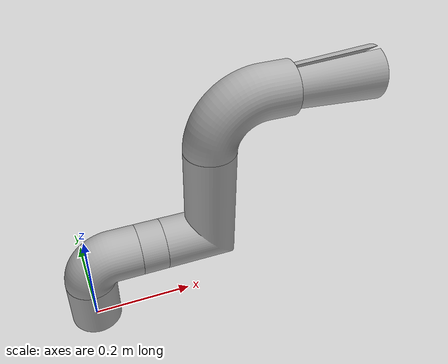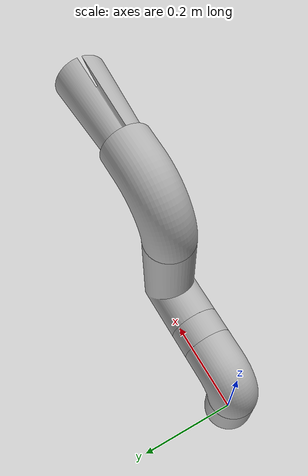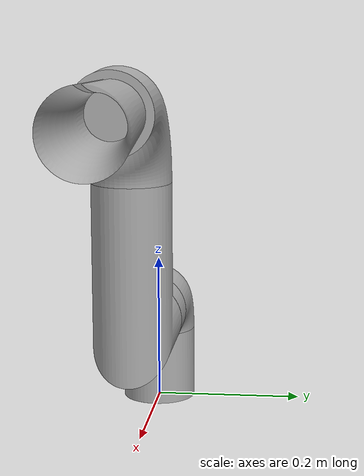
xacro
<?xml version="1.0" ?>
<robot name="arm_urdf" xmlns:xacro="http://www.ros.org/wiki/xacro">

<xacro:include filename="$(find arm_urdf_description)/urdf/materials.xacro" />
<xacro:include filename="$(find arm_urdf_description)/urdf/arm_urdf.trans" />
<xacro:include filename="$(find arm_urdf_description)/urdf/arm_urdf.gazebo" />
<link name="base_link">
  <inertial>
    <origin xyz="0.0 0.0 0.04999999999999999" rpy="0 0 0"/>
    <mass value="6.16537558266997"/>
    <inertia ixx="0.008991" iyy="0.008991" izz="0.007707" ixy="0.0" iyz="0.0" ixz="0.0"/>
  </inertial>
  <visual>
    <origin xyz="0 0 0" rpy="0 0 0"/>
    <geometry>
      <mesh filename="package://arm_urdf_description/meshes/base_link.stl" scale="0.001 0.001 0.001"/>
    </geometry>
    <material name="silver"/>
  </visual>
  <collision>
    <origin xyz="0 0 0" rpy="0 0 0"/>
    <geometry>
      <mesh filename="package://arm_urdf_description/meshes/base_link.stl" scale="0.001 0.001 0.001"/>
    </geometry>
  </collision>
</link>

<link name="link1_1">
  <inertial>
    <origin xyz="0.035413080138187364 9.008917649016028e-18 0.043760759585438375" rpy="0 0 0"/>
    <mass value="7.924962450619449"/>
    <inertia ixx="0.010003" iyy="0.016525" izz="0.016428" ixy="-0.0" iyz="0.0" ixz="-0.002169"/>
  </inertial>
  <visual>
    <origin xyz="-0.0 -0.0 -0.1" rpy="0 0 0"/>
    <geometry>
      <mesh filename="package://arm_urdf_description/meshes/link1_1.stl" scale="0.001 0.001 0.001"/>
    </geometry>
    <material name="silver"/>
  </visual>
  <collision>
    <origin xyz="-0.0 -0.0 -0.1" rpy="0 0 0"/>
    <geometry>
      <mesh filename="package://arm_urdf_description/meshes/link1_1.stl" scale="0.001 0.001 0.001"/>
    </geometry>
  </collision>
</link>

<link name="link2_1">
  <inertial>
    <origin xyz="0.024999999999999994 4.053016170085421e-17 5.551115123125783e-17" rpy="0 0 0"/>
    <mass value="3.082687791334984"/>
    <inertia ixx="0.003853" iyy="0.002569" izz="0.002569" ixy="0.0" iyz="0.0" ixz="0.0"/>
  </inertial>
  <visual>
    <origin xyz="-0.1 -0.0 -0.15" rpy="0 0 0"/>
    <geometry>
      <mesh filename="package://arm_urdf_description/meshes/link2_1.stl" scale="0.001 0.001 0.001"/>
    </geometry>
    <material name="silver"/>
  </visual>
  <collision>
    <origin xyz="-0.1 -0.0 -0.15" rpy="0 0 0"/>
    <geometry>
      <mesh filename="package://arm_urdf_description/meshes/link2_1.stl" scale="0.001 0.001 0.001"/>
    </geometry>
  </collision>
</link>

<link name="link3_1">
  <inertial>
    <origin xyz="0.08645833333333322 -7.720030800162704e-18 0.0635416666666668" rpy="0 0 0"/>
    <mass value="18.496126748009907"/>
    <inertia ixx="0.105145" iyy="0.118451" izz="0.036426" ixy="-0.0" iyz="-0.0" ixz="-0.015915"/>
  </inertial>
  <visual>
    <origin xyz="-0.15 -0.0 -0.15" rpy="0 0 0"/>
    <geometry>
      <mesh filename="package://arm_urdf_description/meshes/link3_1.stl" scale="0.001 0.001 0.001"/>
    </geometry>
    <material name="silver"/>
  </visual>
  <collision>
    <origin xyz="-0.15 -0.0 -0.15" rpy="0 0 0"/>
    <geometry>
      <mesh filename="package://arm_urdf_description/meshes/link3_1.stl" scale="0.001 0.001 0.001"/>
    </geometry>
  </collision>
</link>

<link name="link4_1">
  <inertial>
    <origin xyz="0.05472756118652067 -5.5920739526166885e-18 0.07545406468913224" rpy="0 0 0"/>
    <mass value="12.767237109903917"/>
    <inertia ixx="0.025547" iyy="0.051471" izz="0.041883" ixy="-0.0" iyz="0.0" ixz="-0.014713"/>
  </inertial>
  <visual>
    <origin xyz="-0.25 -0.0 -0.35" rpy="0 0 0"/>
    <geometry>
      <mesh filename="package://arm_urdf_description/meshes/link4_1.stl" scale="0.001 0.001 0.001"/>
    </geometry>
    <material name="silver"/>
  </visual>
  <collision>
    <origin xyz="-0.25 -0.0 -0.35" rpy="0 0 0"/>
    <geometry>
      <mesh filename="package://arm_urdf_description/meshes/link4_1.stl" scale="0.001 0.001 0.001"/>
    </geometry>
  </collision>
</link>

<link name="endaffector_1">
  <inertial>
    <origin xyz="0.07419117924321322 9.79575636201759e-05 -0.0011196600706555038" rpy="0 0 0"/>
    <mass value="2.9730292970710757"/>
    <inertia ixx="0.00467" iyy="0.007602" izz="0.007737" ixy="-1e-06" iyz="-1.2e-05" ixz="1.2e-05"/>
  </inertial>
  <visual>
    <origin xyz="-0.4 -0.0 -0.45" rpy="0 0 0"/>
    <geometry>
      <mesh filename="package://arm_urdf_description/meshes/endaffector_1.stl" scale="0.001 0.001 0.001"/>
    </geometry>
    <material name="silver"/>
  </visual>
  <collision>
    <origin xyz="-0.4 -0.0 -0.45" rpy="0 0 0"/>
    <geometry>
      <mesh filename="package://arm_urdf_description/meshes/endaffector_1.stl" scale="0.001 0.001 0.001"/>
    </geometry>
  </collision>
</link>

<joint name="base_to_link1" type="continuous">
  <origin xyz="0.0 0.0 0.1" rpy="0 0 0"/>
  <parent link="base_link"/>
  <child link="link1_1"/>
  <axis xyz="0.0 0.0 1.0"/>
</joint>

<joint name="link1_to_link2" type="continuous">
  <origin xyz="0.1 0.0 0.05" rpy="0 0 0"/>
  <parent link="link1_1"/>
  <child link="link2_1"/>
  <axis xyz="1.0 0.0 0.0"/>
</joint>

<joint name="link2_to_link3" type="continuous">
  <origin xyz="0.05 0.0 0.0" rpy="0 0 0"/>
  <parent link="link2_1"/>
  <child link="link3_1"/>
  <axis xyz="1.0 0.0 0.0"/>
</joint>

<joint name="link3_to_link4" type="continuous">
  <origin xyz="0.1 0.0 0.2" rpy="0 0 0"/>
  <parent link="link3_1"/>
  <child link="link4_1"/>
  <axis xyz="0.0 0.0 1.0"/>
</joint>

<joint name="link4_to_link5" type="continuous">
  <origin xyz="0.15 0.0 0.1" rpy="0 0 0"/>
  <parent link="link4_1"/>
  <child link="endaffector_1"/>
  <axis xyz="1.0 0.0 0.0"/>
</joint>

</robot>

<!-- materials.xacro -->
<robot name="arm_urdf" xmlns:xacro="http://www.ros.org/wiki/xacro" >

<material name="silver">
  <color rgba="0.700 0.700 0.700 1.000"/>
</material>

</robot>

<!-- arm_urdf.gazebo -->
<robot name="arm_urdf" xmlns:xacro="http://www.ros.org/wiki/xacro" >

<xacro:property name="body_color" value="Gazebo/Silver" />

<gazebo>
  <plugin name="control" filename="libgazebo_ros_control.so"/>
</gazebo>
<gazebo reference="base_link">
  <material>${body_color}</material>
  <mu1>0.2</mu1>
  <mu2>0.2</mu2>
  <selfCollide>true</selfCollide>
  <gravity>true</gravity>
</gazebo>

<gazebo reference="link1_1">
  <material>${body_color}</material>
  <mu1>0.2</mu1>
  <mu2>0.2</mu2>
  <selfCollide>true</selfCollide>
</gazebo>

<gazebo reference="link2_1">
  <material>${body_color}</material>
  <mu1>0.2</mu1>
  <mu2>0.2</mu2>
  <selfCollide>true</selfCollide>
</gazebo>

<gazebo reference="link3_1">
  <material>${body_color}</material>
  <mu1>0.2</mu1>
  <mu2>0.2</mu2>
  <selfCollide>true</selfCollide>
</gazebo>

<gazebo reference="link4_1">
  <material>${body_color}</material>
  <mu1>0.2</mu1>
  <mu2>0.2</mu2>
  <selfCollide>true</selfCollide>
</gazebo>

<gazebo reference="endaffector_1">
  <material>${body_color}</material>
  <mu1>0.2</mu1>
  <mu2>0.2</mu2>
  <selfCollide>true</selfCollide>
</gazebo>

</robot>
